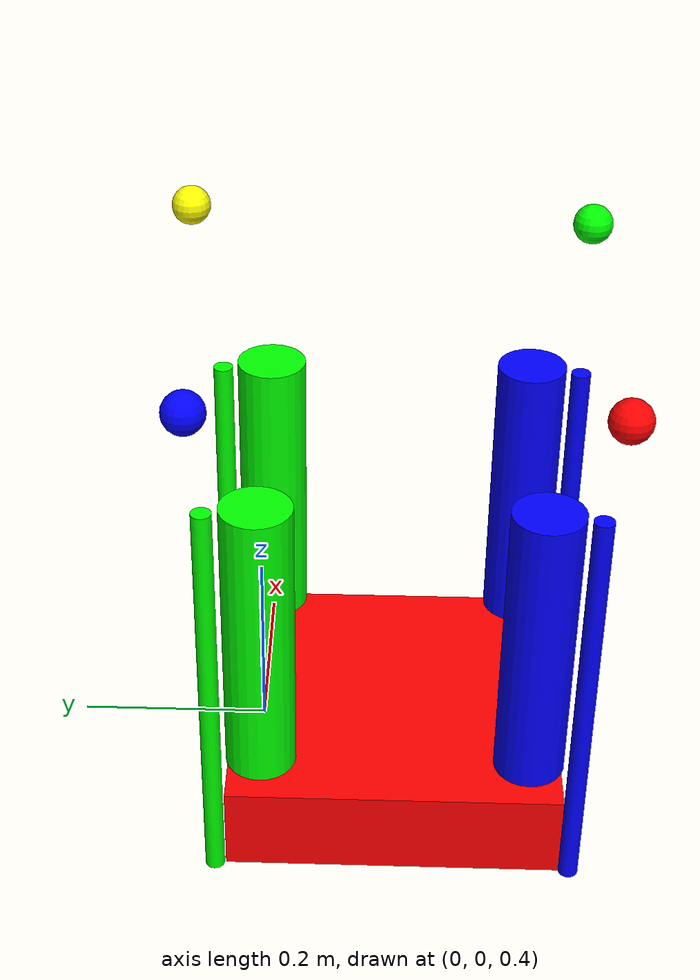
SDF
<?xml version='1.0'?>
<sdf version='1.6'>
  <model name='AquaShokoSimple'>
    <link name='Frame'>
      <pose frame=''>-0.072029 -0.143105 0.449416 0 -0 0</pose>
      <inertial>
        <mass>2.4</mass>
        <inertia>
          <ixx>0.166667</ixx>
          <ixy>0</ixy>
          <ixz>0</ixz>
          <iyy>0.166667</iyy>
          <iyz>0</iyz>
          <izz>0.166667</izz>
        </inertia>
        <pose frame=''>0 0 0 0 -0 0</pose>
      </inertial>
      <self_collide>0</self_collide>
      <kinematic>0</kinematic>
      <gravity>1</gravity>
      <visual name='visual'>
        <pose frame=''>0 0 0 0 -0 0</pose>
        <geometry>
          <box>
            <size>0.336 0.336 0.09</size>
          </box>
        </geometry>
        <material>
          <lighting>1</lighting>
          <script>
            <uri>file://media/materials/scripts/gazebo.material</uri>
            <name>Gazebo/Grey</name>
          </script>
          <ambient>1 0 0 1</ambient>
          <diffuse>1 0 0 1</diffuse>
          <specular>0.01 0.01 0.01 1</specular>
          <emissive>0 0 0 1</emissive>
          <shader type='vertex'>
            <normal_map>__default__</normal_map>
          </shader>
        </material>
        <transparency>0</transparency>
        <cast_shadows>1</cast_shadows>
      </visual>
      <collision name='collision'>
        <laser_retro>0</laser_retro>
        <max_contacts>10</max_contacts>
        <pose frame=''>0 0 0 0 -0 0</pose>
        <geometry>
          <box>
            <size>0.336 0.336 0.09</size>
          </box>
        </geometry>
        <surface>
          <friction>
            <ode>
              <mu>1</mu>
              <mu2>1</mu2>
              <fdir1>0 0 0</fdir1>
              <slip1>0</slip1>
              <slip2>0</slip2>
            </ode>
            <torsional>
              <coefficient>1</coefficient>
              <patch_radius>0</patch_radius>
              <surface_radius>0</surface_radius>
              <use_patch_radius>1</use_patch_radius>
              <ode>
                <slip>0</slip>
              </ode>
            </torsional>
          </friction>
          <bounce>
            <restitution_coefficient>0</restitution_coefficient>
            <threshold>1e+06</threshold>
          </bounce>
          <contact>
            <collide_without_contact>0</collide_without_contact>
            <collide_without_contact_bitmask>1</collide_without_contact_bitmask>
            <collide_bitmask>1</collide_bitmask>
            <ode>
              <soft_cfm>0</soft_cfm>
              <soft_erp>0.2</soft_erp>
              <kp>1e+13</kp>
              <kd>1</kd>
              <max_vel>0.01</max_vel>
              <min_depth>0</min_depth>
            </ode>
            <bullet>
              <split_impulse>1</split_impulse>
              <split_impulse_penetration_threshold>-0.01</split_impulse_penetration_threshold>
              <soft_cfm>0</soft_cfm>
              <soft_erp>0.2</soft_erp>
              <kp>1e+13</kp>
              <kd>1</kd>
            </bullet>
          </contact>
        </surface>
      </collision>
    </link>
    <link name='EndLink'>
      <pose frame=''>0.060971 0.039895 0.589416 0 -0 0</pose>
      <inertial>
        <mass>0.02</mass>
        <inertia>
          <ixx>0.145833</ixx>
          <ixy>0</ixy>
          <ixz>0</ixz>
          <iyy>0.145833</iyy>
          <iyz>0</iyz>
          <izz>0.125</izz>
        </inertia>
        <pose frame=''>0 0 0 0 -0 0</pose>
      </inertial>
      <self_collide>0</self_collide>
      <kinematic>0</kinematic>
      <visual name='visual'>
        <pose frame=''>0 0 0 0 -0 0</pose>
        <geometry>
          <cylinder>
            <radius>0.01</radius>
            <length>0.44</length>
          </cylinder>
        </geometry>
        <material>
          <lighting>1</lighting>
          <script>
            <uri>file://media/materials/scripts/gazebo.material</uri>
            <name>Gazebo/Grey</name>
          </script>
          <ambient>0 1 0 1</ambient>
          <diffuse>0 1 0 1</diffuse>
          <specular>0.01 0.01 0.01 1</specular>
          <emissive>0 0 0 1</emissive>
          <shader type='vertex'>
            <normal_map>__default__</normal_map>
          </shader>
        </material>
        <transparency>0</transparency>
        <cast_shadows>1</cast_shadows>
      </visual>
      <collision name='collision'>
        <laser_retro>0</laser_retro>
        <max_contacts>10</max_contacts>
        <pose frame=''>0 0 0 0 -0 0</pose>
        <geometry>
          <cylinder>
            <radius>0.01</radius>
            <length>0.44</length>
          </cylinder>
        </geometry>
        <surface>
          <friction>
            <ode>
              <mu>1</mu>
              <mu2>1</mu2>
              <fdir1>0 0 0</fdir1>
              <slip1>0</slip1>
              <slip2>0</slip2>
            </ode>
            <torsional>
              <coefficient>1</coefficient>
              <patch_radius>0</patch_radius>
              <surface_radius>0</surface_radius>
              <use_patch_radius>1</use_patch_radius>
              <ode>
                <slip>0</slip>
              </ode>
            </torsional>
          </friction>
          <bounce>
            <restitution_coefficient>0</restitution_coefficient>
            <threshold>1e+06</threshold>
          </bounce>
          <contact>
            <collide_without_contact>0</collide_without_contact>
            <collide_without_contact_bitmask>1</collide_without_contact_bitmask>
            <collide_bitmask>1</collide_bitmask>
            <ode>
              <soft_cfm>0</soft_cfm>
              <soft_erp>0.2</soft_erp>
              <kp>1e+13</kp>
              <kd>1</kd>
              <max_vel>0.01</max_vel>
              <min_depth>0</min_depth>
            </ode>
            <bullet>
              <split_impulse>1</split_impulse>
              <split_impulse_penetration_threshold>-0.01</split_impulse_penetration_threshold>
              <soft_cfm>0</soft_cfm>
              <soft_erp>0.2</soft_erp>
              <kp>1e+13</kp>
              <kd>1</kd>
            </bullet>
          </contact>
        </surface>
      </collision>
    </link>
    <link name='EndLink_clone'>
      <pose frame=''>-0.205029 0.039895 0.589416 0 -0 0</pose>
      <inertial>
        <mass>0.02</mass>
        <inertia>
          <ixx>0.145833</ixx>
          <ixy>0</ixy>
          <ixz>0</ixz>
          <iyy>0.145833</iyy>
          <iyz>0</iyz>
          <izz>0.125</izz>
        </inertia>
        <pose frame=''>0 0 0 0 -0 0</pose>
      </inertial>
      <self_collide>0</self_collide>
      <kinematic>0</kinematic>
      <visual name='visual'>
        <pose frame=''>0 0 0 0 -0 0</pose>
        <geometry>
          <cylinder>
            <radius>0.01</radius>
            <length>0.44</length>
          </cylinder>
        </geometry>
        <material>
          <lighting>1</lighting>
          <script>
            <uri>file://media/materials/scripts/gazebo.material</uri>
            <name>Gazebo/Grey</name>
          </script>
          <ambient>0 1 0 1</ambient>
          <diffuse>0.1 0.1 0.1 1</diffuse>
          <specular>0.01 0.01 0.01 1</specular>
          <emissive>0 0 0 1</emissive>
          <shader type='vertex'>
            <normal_map>__default__</normal_map>
          </shader>
        </material>
        <transparency>0</transparency>
        <cast_shadows>1</cast_shadows>
      </visual>
      <collision name='collision'>
        <laser_retro>0</laser_retro>
        <max_contacts>10</max_contacts>
        <pose frame=''>0 0 0 0 -0 0</pose>
        <geometry>
          <cylinder>
            <radius>0.01</radius>
            <length>0.44</length>
          </cylinder>
        </geometry>
        <surface>
          <friction>
            <ode>
              <mu>1</mu>
              <mu2>1</mu2>
              <fdir1>0 0 0</fdir1>
              <slip1>0</slip1>
              <slip2>0</slip2>
            </ode>
            <torsional>
              <coefficient>1</coefficient>
              <patch_radius>0</patch_radius>
              <surface_radius>0</surface_radius>
              <use_patch_radius>1</use_patch_radius>
              <ode>
                <slip>0</slip>
              </ode>
            </torsional>
          </friction>
          <bounce>
            <restitution_coefficient>0</restitution_coefficient>
            <threshold>1e+06</threshold>
          </bounce>
          <contact>
            <collide_without_contact>0</collide_without_contact>
            <collide_without_contact_bitmask>1</collide_without_contact_bitmask>
            <collide_bitmask>1</collide_bitmask>
            <ode>
              <soft_cfm>0</soft_cfm>
              <soft_erp>0.2</soft_erp>
              <kp>1e+13</kp>
              <kd>1</kd>
              <max_vel>0.01</max_vel>
              <min_depth>0</min_depth>
            </ode>
            <bullet>
              <split_impulse>1</split_impulse>
              <split_impulse_penetration_threshold>-0.01</split_impulse_penetration_threshold>
              <soft_cfm>0</soft_cfm>
              <soft_erp>0.2</soft_erp>
              <kp>1e+13</kp>
              <kd>1</kd>
            </bullet>
          </contact>
        </surface>
      </collision>
    </link>
    <link name='EndLink_clone_0'>
      <pose frame=''>0.060971 -0.326105 0.589416 0 -0 0</pose>
      <inertial>
        <mass>0.02</mass>
        <inertia>
          <ixx>0.145833</ixx>
          <ixy>0</ixy>
          <ixz>0</ixz>
          <iyy>0.145833</iyy>
          <iyz>0</iyz>
          <izz>0.125</izz>
        </inertia>
        <pose frame=''>0 0 0 0 -0 0</pose>
      </inertial>
      <self_collide>0</self_collide>
      <kinematic>0</kinematic>
      <visual name='visual'>
        <pose frame=''>0 0 0 0 -0 0</pose>
        <geometry>
          <cylinder>
            <radius>0.01</radius>
            <length>0.44</length>
          </cylinder>
        </geometry>
        <material>
          <lighting>1</lighting>
          <script>
            <uri>file://media/materials/scripts/gazebo.material</uri>
            <name>Gazebo/Grey</name>
          </script>
          <ambient>0 0 1 1</ambient>
          <diffuse>0 0 1 1</diffuse>
          <specular>0.01 0.01 0.01 1</specular>
          <emissive>0 0 0 1</emissive>
          <shader type='vertex'>
            <normal_map>__default__</normal_map>
          </shader>
        </material>
        <transparency>0</transparency>
        <cast_shadows>1</cast_shadows>
      </visual>
      <collision name='collision'>
        <laser_retro>0</laser_retro>
        <max_contacts>10</max_contacts>
        <pose frame=''>0 0 0 0 -0 0</pose>
        <geometry>
          <cylinder>
            <radius>0.01</radius>
            <length>0.44</length>
          </cylinder>
        </geometry>
        <surface>
          <friction>
            <ode>
              <mu>1</mu>
              <mu2>1</mu2>
              <fdir1>0 0 0</fdir1>
              <slip1>0</slip1>
              <slip2>0</slip2>
            </ode>
            <torsional>
              <coefficient>1</coefficient>
              <patch_radius>0</patch_radius>
              <surface_radius>0</surface_radius>
              <use_patch_radius>1</use_patch_radius>
              <ode>
                <slip>0</slip>
              </ode>
            </torsional>
          </friction>
          <bounce>
            <restitution_coefficient>0</restitution_coefficient>
            <threshold>1e+06</threshold>
          </bounce>
          <contact>
            <collide_without_contact>0</collide_without_contact>
            <collide_without_contact_bitmask>1</collide_without_contact_bitmask>
            <collide_bitmask>1</collide_bitmask>
            <ode>
              <soft_cfm>0</soft_cfm>
              <soft_erp>0.2</soft_erp>
              <kp>1e+13</kp>
              <kd>1</kd>
              <max_vel>0.01</max_vel>
              <min_depth>0</min_depth>
            </ode>
            <bullet>
              <split_impulse>1</split_impulse>
              <split_impulse_penetration_threshold>-0.01</split_impulse_penetration_threshold>
              <soft_cfm>0</soft_cfm>
              <soft_erp>0.2</soft_erp>
              <kp>1e+13</kp>
              <kd>1</kd>
            </bullet>
          </contact>
        </surface>
      </collision>
    </link>
    <link name='EndLink_clone_1'>
      <pose frame=''>-0.205029 -0.326105 0.589416 0 -0 0</pose>
      <inertial>
        <mass>0.02</mass>
        <inertia>
          <ixx>0.145833</ixx>
          <ixy>0</ixy>
          <ixz>0</ixz>
          <iyy>0.145833</iyy>
          <iyz>0</iyz>
          <izz>0.125</izz>
        </inertia>
        <pose frame=''>0 0 0 0 -0 0</pose>
      </inertial>
      <self_collide>0</self_collide>
      <kinematic>0</kinematic>
      <visual name='visual'>
        <pose frame=''>0 0 0 0 -0 0</pose>
        <geometry>
          <cylinder>
            <radius>0.01</radius>
            <length>0.44</length>
          </cylinder>
        </geometry>
        <material>
          <lighting>1</lighting>
          <script>
            <uri>file://media/materials/scripts/gazebo.material</uri>
            <name>Gazebo/Grey</name>
          </script>
          <ambient>0 0 1 1</ambient>
          <diffuse>0.1 0.1 0.1 1</diffuse>
          <specular>0.01 0.01 0.01 1</specular>
          <emissive>0 0 0 1</emissive>
          <shader type='vertex'>
            <normal_map>__default__</normal_map>
          </shader>
        </material>
        <transparency>0</transparency>
        <cast_shadows>1</cast_shadows>
      </visual>
      <collision name='collision'>
        <laser_retro>0</laser_retro>
        <max_contacts>10</max_contacts>
        <pose frame=''>0 0 0 0 -0 0</pose>
        <geometry>
          <cylinder>
            <radius>0.01</radius>
            <length>0.44</length>
          </cylinder>
        </geometry>
        <surface>
          <friction>
            <ode>
              <mu>1</mu>
              <mu2>1</mu2>
              <fdir1>0 0 0</fdir1>
              <slip1>0</slip1>
              <slip2>0</slip2>
            </ode>
            <torsional>
              <coefficient>1</coefficient>
              <patch_radius>0</patch_radius>
              <surface_radius>0</surface_radius>
              <use_patch_radius>1</use_patch_radius>
              <ode>
                <slip>0</slip>
              </ode>
            </torsional>
          </friction>
          <bounce>
            <restitution_coefficient>0</restitution_coefficient>
            <threshold>1e+06</threshold>
          </bounce>
          <contact>
            <collide_without_contact>0</collide_without_contact>
            <collide_without_contact_bitmask>1</collide_without_contact_bitmask>
            <collide_bitmask>1</collide_bitmask>
            <ode>
              <soft_cfm>0</soft_cfm>
              <soft_erp>0.2</soft_erp>
              <kp>1e+13</kp>
              <kd>1</kd>
              <max_vel>0.01</max_vel>
              <min_depth>0</min_depth>
            </ode>
            <bullet>
              <split_impulse>1</split_impulse>
              <split_impulse_penetration_threshold>-0.01</split_impulse_penetration_threshold>
              <soft_cfm>0</soft_cfm>
              <soft_erp>0.2</soft_erp>
              <kp>1e+13</kp>
              <kd>1</kd>
            </bullet>
          </contact>
        </surface>
      </collision>
    </link>
    <link name='ShortLink'>
      <pose frame=''>0.060971 -0.010105 0.666916 0 -0 0</pose>
      <inertial>
        <mass>1.2</mass>
        <inertia>
          <ixx>0.145833</ixx>
          <ixy>0</ixy>
          <ixz>0</ixz>
          <iyy>0.145833</iyy>
          <iyz>0</iyz>
          <izz>0.125</izz>
        </inertia>
        <pose frame=''>0 0 0 0 -0 0</pose>
      </inertial>
      <self_collide>0</self_collide>
      <kinematic>0</kinematic>
      <visual name='visual'>
        <pose frame=''>0 0 0 0 -0 0</pose>
        <geometry>
          <cylinder>
            <radius>0.035</radius>
            <length>0.3</length>
          </cylinder>
        </geometry>
        <material>
          <lighting>1</lighting>
          <script>
            <uri>file://media/materials/scripts/gazebo.material</uri>
            <name>Gazebo/Grey</name>
          </script>
          <ambient>0 1 0 1</ambient>
          <diffuse>0 1 0 1</diffuse>
          <specular>0.01 0.01 0.01 1</specular>
          <emissive>0 0 0 1</emissive>
          <shader type='vertex'>
            <normal_map>__default__</normal_map>
          </shader>
        </material>
        <transparency>0</transparency>
        <cast_shadows>1</cast_shadows>
      </visual>
      <collision name='collision'>
        <laser_retro>0</laser_retro>
        <max_contacts>10</max_contacts>
        <pose frame=''>0 0 0 0 -0 0</pose>
        <geometry>
          <cylinder>
            <radius>0.035</radius>
            <length>0.3</length>
          </cylinder>
        </geometry>
        <surface>
          <friction>
            <ode>
              <mu>1</mu>
              <mu2>1</mu2>
              <fdir1>0 0 0</fdir1>
              <slip1>0</slip1>
              <slip2>0</slip2>
            </ode>
            <torsional>
              <coefficient>1</coefficient>
              <patch_radius>0</patch_radius>
              <surface_radius>0</surface_radius>
              <use_patch_radius>1</use_patch_radius>
              <ode>
                <slip>0</slip>
              </ode>
            </torsional>
          </friction>
          <bounce>
            <restitution_coefficient>0</restitution_coefficient>
            <threshold>1e+06</threshold>
          </bounce>
          <contact>
            <collide_without_contact>0</collide_without_contact>
            <collide_without_contact_bitmask>1</collide_without_contact_bitmask>
            <collide_bitmask>1</collide_bitmask>
            <ode>
              <soft_cfm>0</soft_cfm>
              <soft_erp>0.2</soft_erp>
              <kp>1e+13</kp>
              <kd>1</kd>
              <max_vel>0.01</max_vel>
              <min_depth>0</min_depth>
            </ode>
            <bullet>
              <split_impulse>1</split_impulse>
              <split_impulse_penetration_threshold>-0.01</split_impulse_penetration_threshold>
              <soft_cfm>0</soft_cfm>
              <soft_erp>0.2</soft_erp>
              <kp>1e+13</kp>
              <kd>1</kd>
            </bullet>
          </contact>
        </surface>
      </collision>
    </link>
    <link name='ShortLink_clone'>
      <pose frame=''>-0.205029 -0.010105 0.666916 0 -0 0</pose>
      <inertial>
        <mass>1.2</mass>
        <inertia>
          <ixx>0.145833</ixx>
          <ixy>0</ixy>
          <ixz>0</ixz>
          <iyy>0.145833</iyy>
          <iyz>0</iyz>
          <izz>0.125</izz>
        </inertia>
        <pose frame=''>0 0 0 0 -0 0</pose>
      </inertial>
      <self_collide>0</self_collide>
      <kinematic>0</kinematic>
      <visual name='visual'>
        <pose frame=''>0 0 0 0 -0 0</pose>
        <geometry>
          <cylinder>
            <radius>0.035</radius>
            <length>0.3</length>
          </cylinder>
        </geometry>
        <material>
          <lighting>1</lighting>
          <script>
            <uri>file://media/materials/scripts/gazebo.material</uri>
            <name>Gazebo/Grey</name>
          </script>
          <ambient>0 1 0 1</ambient>
          <diffuse>0.1 0.1 0.1 1</diffuse>
          <specular>0.01 0.01 0.01 1</specular>
          <emissive>0 0 0 1</emissive>
          <shader type='vertex'>
            <normal_map>__default__</normal_map>
          </shader>
        </material>
        <transparency>0</transparency>
        <cast_shadows>1</cast_shadows>
      </visual>
      <collision name='collision'>
        <laser_retro>0</laser_retro>
        <max_contacts>10</max_contacts>
        <pose frame=''>0 0 0 0 -0 0</pose>
        <geometry>
          <cylinder>
            <radius>0.035</radius>
            <length>0.3</length>
          </cylinder>
        </geometry>
        <surface>
          <friction>
            <ode>
              <mu>1</mu>
              <mu2>1</mu2>
              <fdir1>0 0 0</fdir1>
              <slip1>0</slip1>
              <slip2>0</slip2>
            </ode>
            <torsional>
              <coefficient>1</coefficient>
              <patch_radius>0</patch_radius>
              <surface_radius>0</surface_radius>
              <use_patch_radius>1</use_patch_radius>
              <ode>
                <slip>0</slip>
              </ode>
            </torsional>
          </friction>
          <bounce>
            <restitution_coefficient>0</restitution_coefficient>
            <threshold>1e+06</threshold>
          </bounce>
          <contact>
            <collide_without_contact>0</collide_without_contact>
            <collide_without_contact_bitmask>1</collide_without_contact_bitmask>
            <collide_bitmask>1</collide_bitmask>
            <ode>
              <soft_cfm>0</soft_cfm>
              <soft_erp>0.2</soft_erp>
              <kp>1e+13</kp>
              <kd>1</kd>
              <max_vel>0.01</max_vel>
              <min_depth>0</min_depth>
            </ode>
            <bullet>
              <split_impulse>1</split_impulse>
              <split_impulse_penetration_threshold>-0.01</split_impulse_penetration_threshold>
              <soft_cfm>0</soft_cfm>
              <soft_erp>0.2</soft_erp>
              <kp>1e+13</kp>
              <kd>1</kd>
            </bullet>
          </contact>
        </surface>
      </collision>
    </link>
    <link name='ShortLink_clone_0'>
      <pose frame=''>0.060971 -0.276105 0.666916 0 -0 0</pose>
      <inertial>
        <mass>1.2</mass>
        <inertia>
          <ixx>0.145833</ixx>
          <ixy>0</ixy>
          <ixz>0</ixz>
          <iyy>0.145833</iyy>
          <iyz>0</iyz>
          <izz>0.125</izz>
        </inertia>
        <pose frame=''>0 0 0 0 -0 0</pose>
      </inertial>
      <self_collide>0</self_collide>
      <kinematic>0</kinematic>
      <visual name='visual'>
        <pose frame=''>0 0 0 0 -0 0</pose>
        <geometry>
          <cylinder>
            <radius>0.035</radius>
            <length>0.3</length>
          </cylinder>
        </geometry>
        <material>
          <lighting>1</lighting>
          <script>
            <uri>file://media/materials/scripts/gazebo.material</uri>
            <name>Gazebo/Grey</name>
          </script>
          <ambient>0 0 1 1</ambient>
          <diffuse>0 0 1 1</diffuse>
          <specular>0.01 0.01 0.01 1</specular>
          <emissive>0 0 0 1</emissive>
          <shader type='vertex'>
            <normal_map>__default__</normal_map>
          </shader>
        </material>
        <transparency>0</transparency>
        <cast_shadows>1</cast_shadows>
      </visual>
      <collision name='collision'>
        <laser_retro>0</laser_retro>
        <max_contacts>10</max_contacts>
        <pose frame=''>0 0 0 0 -0 0</pose>
        <geometry>
          <cylinder>
            <radius>0.035</radius>
            <length>0.3</length>
          </cylinder>
        </geometry>
        <surface>
          <friction>
            <ode>
              <mu>1</mu>
              <mu2>1</mu2>
              <fdir1>0 0 0</fdir1>
              <slip1>0</slip1>
              <slip2>0</slip2>
            </ode>
            <torsional>
              <coefficient>1</coefficient>
              <patch_radius>0</patch_radius>
              <surface_radius>0</surface_radius>
              <use_patch_radius>1</use_patch_radius>
              <ode>
                <slip>0</slip>
              </ode>
            </torsional>
          </friction>
          <bounce>
            <restitution_coefficient>0</restitution_coefficient>
            <threshold>1e+06</threshold>
          </bounce>
          <contact>
            <collide_without_contact>0</collide_without_contact>
            <collide_without_contact_bitmask>1</collide_without_contact_bitmask>
            <collide_bitmask>1</collide_bitmask>
            <ode>
              <soft_cfm>0</soft_cfm>
              <soft_erp>0.2</soft_erp>
              <kp>1e+13</kp>
              <kd>1</kd>
              <max_vel>0.01</max_vel>
              <min_depth>0</min_depth>
            </ode>
            <bullet>
              <split_impulse>1</split_impulse>
              <split_impulse_penetration_threshold>-0.01</split_impulse_penetration_threshold>
              <soft_cfm>0</soft_cfm>
              <soft_erp>0.2</soft_erp>
              <kp>1e+13</kp>
              <kd>1</kd>
            </bullet>
          </contact>
        </surface>
      </collision>
    </link>
    <link name='ShortLink_clone_1'>
      <pose frame=''>-0.205029 -0.276105 0.666916 0 -0 0</pose>
      <inertial>
        <mass>1.2</mass>
        <inertia>
          <ixx>0.145833</ixx>
          <ixy>0</ixy>
          <ixz>0</ixz>
          <iyy>0.145833</iyy>
          <iyz>0</iyz>
          <izz>0.125</izz>
        </inertia>
        <pose frame=''>0 0 0 0 -0 0</pose>
      </inertial>
      <self_collide>0</self_collide>
      <kinematic>0</kinematic>
      <visual name='visual'>
        <pose frame=''>0 0 0 0 -0 0</pose>
        <geometry>
          <cylinder>
            <radius>0.035</radius>
            <length>0.3</length>
          </cylinder>
        </geometry>
        <material>
          <lighting>1</lighting>
          <script>
            <uri>file://media/materials/scripts/gazebo.material</uri>
            <name>Gazebo/Grey</name>
          </script>
          <ambient>0 0 1 1</ambient>
          <diffuse>0.1 0.1 0.1 1</diffuse>
          <specular>0.01 0.01 0.01 1</specular>
          <emissive>0 0 0 1</emissive>
          <shader type='vertex'>
            <normal_map>__default__</normal_map>
          </shader>
        </material>
        <transparency>0</transparency>
        <cast_shadows>1</cast_shadows>
      </visual>
      <collision name='collision'>
        <laser_retro>0</laser_retro>
        <max_contacts>10</max_contacts>
        <pose frame=''>0 0 0 0 -0 0</pose>
        <geometry>
          <cylinder>
            <radius>0.035</radius>
            <length>0.3</length>
          </cylinder>
        </geometry>
        <surface>
          <friction>
            <ode>
              <mu>1</mu>
              <mu2>1</mu2>
              <fdir1>0 0 0</fdir1>
              <slip1>0</slip1>
              <slip2>0</slip2>
            </ode>
            <torsional>
              <coefficient>1</coefficient>
              <patch_radius>0</patch_radius>
              <surface_radius>0</surface_radius>
              <use_patch_radius>1</use_patch_radius>
              <ode>
                <slip>0</slip>
              </ode>
            </torsional>
          </friction>
          <bounce>
            <restitution_coefficient>0</restitution_coefficient>
            <threshold>1e+06</threshold>
          </bounce>
          <contact>
            <collide_without_contact>0</collide_without_contact>
            <collide_without_contact_bitmask>1</collide_without_contact_bitmask>
            <collide_bitmask>1</collide_bitmask>
            <ode>
              <soft_cfm>0</soft_cfm>
              <soft_erp>0.2</soft_erp>
              <kp>1e+13</kp>
              <kd>1</kd>
              <max_vel>0.01</max_vel>
              <min_depth>0</min_depth>
            </ode>
            <bullet>
              <split_impulse>1</split_impulse>
              <split_impulse_penetration_threshold>-0.01</split_impulse_penetration_threshold>
              <soft_cfm>0</soft_cfm>
              <soft_erp>0.2</soft_erp>
              <kp>1e+13</kp>
              <kd>1</kd>
            </bullet>
          </contact>
        </surface>
      </collision>
    </link>
    <link name='link_0'>
      <pose frame=''>0.145971 0.074895 0.949416 0 -0 0</pose>
      <inertial>
        <mass>1</mass>
        <inertia>
          <ixx>0.1</ixx>
          <ixy>0</ixy>
          <ixz>0</ixz>
          <iyy>0.1</iyy>
          <iyz>0</iyz>
          <izz>0.1</izz>
        </inertia>
        <pose frame=''>0 0 0 0 -0 0</pose>
      </inertial>
      <self_collide>0</self_collide>
      <kinematic>0</kinematic>
      <visual name='visual'>
        <pose frame=''>0 0 0 0 -0 0</pose>
        <geometry>
          <sphere>
            <radius>0.02</radius>
          </sphere>
        </geometry>
        <material>
          <lighting>1</lighting>
          <script>
            <uri>file://media/materials/scripts/gazebo.material</uri>
            <name>Gazebo/Grey</name>
          </script>
          <ambient>1 1 0 1</ambient>
          <diffuse>0 0 0 1</diffuse>
          <specular>0.01 0.01 0.01 1</specular>
          <emissive>0 0 0 1</emissive>
          <shader type='vertex'>
            <normal_map>__default__</normal_map>
          </shader>
        </material>
        <transparency>0</transparency>
        <cast_shadows>1</cast_shadows>
      </visual>
      <collision name='collision'>
        <laser_retro>0</laser_retro>
        <max_contacts>10</max_contacts>
        <pose frame=''>0 0 0 0 -0 0</pose>
        <geometry>
          <sphere>
            <radius>0.02</radius>
          </sphere>
        </geometry>
        <surface>
          <friction>
            <ode>
              <mu>1</mu>
              <mu2>1</mu2>
              <fdir1>0 0 0</fdir1>
              <slip1>0</slip1>
              <slip2>0</slip2>
            </ode>
            <torsional>
              <coefficient>1</coefficient>
              <patch_radius>0</patch_radius>
              <surface_radius>0</surface_radius>
              <use_patch_radius>1</use_patch_radius>
              <ode>
                <slip>0</slip>
              </ode>
            </torsional>
          </friction>
          <bounce>
            <restitution_coefficient>0</restitution_coefficient>
            <threshold>1e+06</threshold>
          </bounce>
          <contact>
            <collide_without_contact>0</collide_without_contact>
            <collide_without_contact_bitmask>1</collide_without_contact_bitmask>
            <collide_bitmask>1</collide_bitmask>
            <ode>
              <soft_cfm>0</soft_cfm>
              <soft_erp>0.2</soft_erp>
              <kp>1e+13</kp>
              <kd>1</kd>
              <max_vel>0.01</max_vel>
              <min_depth>0</min_depth>
            </ode>
            <bullet>
              <split_impulse>1</split_impulse>
              <split_impulse_penetration_threshold>-0.01</split_impulse_penetration_threshold>
              <soft_cfm>0</soft_cfm>
              <soft_erp>0.2</soft_erp>
              <kp>1e+13</kp>
              <kd>1</kd>
            </bullet>
          </contact>
        </surface>
      </collision>
    </link>
    <link name='link_0_clone'>
      <pose frame=''>-0.260029 -0.331105 0.949416 0 -0 0</pose>
      <inertial>
        <mass>1</mass>
        <inertia>
          <ixx>0.1</ixx>
          <ixy>0</ixy>
          <ixz>0</ixz>
          <iyy>0.1</iyy>
          <iyz>0</iyz>
          <izz>0.1</izz>
        </inertia>
        <pose frame=''>0 0 0 0 -0 0</pose>
      </inertial>
      <self_collide>0</self_collide>
      <kinematic>0</kinematic>
      <visual name='visual'>
        <pose frame=''>0 0 0 0 -0 0</pose>
        <geometry>
          <sphere>
            <radius>0.02</radius>
          </sphere>
        </geometry>
        <material>
          <lighting>1</lighting>
          <script>
            <uri>file://media/materials/scripts/gazebo.material</uri>
            <name>Gazebo/Grey</name>
          </script>
          <ambient>1 1 0 1</ambient>
          <diffuse>1 0 0 1</diffuse>
          <specular>0.01 0.01 0.01 1</specular>
          <emissive>0 0 0 1</emissive>
          <shader type='vertex'>
            <normal_map>__default__</normal_map>
          </shader>
        </material>
        <transparency>0</transparency>
        <cast_shadows>1</cast_shadows>
      </visual>
      <collision name='collision'>
        <laser_retro>0</laser_retro>
        <max_contacts>10</max_contacts>
        <pose frame=''>0 0 0 0 -0 0</pose>
        <geometry>
          <sphere>
            <radius>0.02</radius>
          </sphere>
        </geometry>
        <surface>
          <friction>
            <ode>
              <mu>1</mu>
              <mu2>1</mu2>
              <fdir1>0 0 0</fdir1>
              <slip1>0</slip1>
              <slip2>0</slip2>
            </ode>
            <torsional>
              <coefficient>1</coefficient>
              <patch_radius>0</patch_radius>
              <surface_radius>0</surface_radius>
              <use_patch_radius>1</use_patch_radius>
              <ode>
                <slip>0</slip>
              </ode>
            </torsional>
          </friction>
          <bounce>
            <restitution_coefficient>0</restitution_coefficient>
            <threshold>1e+06</threshold>
          </bounce>
          <contact>
            <collide_without_contact>0</collide_without_contact>
            <collide_without_contact_bitmask>1</collide_without_contact_bitmask>
            <collide_bitmask>1</collide_bitmask>
            <ode>
              <soft_cfm>0</soft_cfm>
              <soft_erp>0.2</soft_erp>
              <kp>1e+13</kp>
              <kd>1</kd>
              <max_vel>0.01</max_vel>
              <min_depth>0</min_depth>
            </ode>
            <bullet>
              <split_impulse>1</split_impulse>
              <split_impulse_penetration_threshold>-0.01</split_impulse_penetration_threshold>
              <soft_cfm>0</soft_cfm>
              <soft_erp>0.2</soft_erp>
              <kp>1e+13</kp>
              <kd>1</kd>
            </bullet>
          </contact>
        </surface>
      </collision>
    </link>
    <link name='link_0_clone_0'>
      <pose frame=''>0.115971 -0.331105 0.949416 0 -0 0</pose>
      <inertial>
        <mass>1</mass>
        <inertia>
          <ixx>0.1</ixx>
          <ixy>0</ixy>
          <ixz>0</ixz>
          <iyy>0.1</iyy>
          <iyz>0</iyz>
          <izz>0.1</izz>
        </inertia>
        <pose frame=''>0 0 0 0 -0 0</pose>
      </inertial>
      <self_collide>0</self_collide>
      <kinematic>0</kinematic>
      <visual name='visual'>
        <pose frame=''>0 0 0 0 -0 0</pose>
        <geometry>
          <sphere>
            <radius>0.02</radius>
          </sphere>
        </geometry>
        <material>
          <lighting>1</lighting>
          <script>
            <uri>file://media/materials/scripts/gazebo.material</uri>
            <name>Gazebo/Grey</name>
          </script>
          <ambient>1 1 0 1</ambient>
          <diffuse>0 1 0 1</diffuse>
          <specular>0.01 0.01 0.01 1</specular>
          <emissive>0 0 0 1</emissive>
          <shader type='vertex'>
            <normal_map>__default__</normal_map>
          </shader>
        </material>
        <transparency>0</transparency>
        <cast_shadows>1</cast_shadows>
      </visual>
      <collision name='collision'>
        <laser_retro>0</laser_retro>
        <max_contacts>10</max_contacts>
        <pose frame=''>0 0 0 0 -0 0</pose>
        <geometry>
          <sphere>
            <radius>0.02</radius>
          </sphere>
        </geometry>
        <surface>
          <friction>
            <ode>
              <mu>1</mu>
              <mu2>1</mu2>
              <fdir1>0 0 0</fdir1>
              <slip1>0</slip1>
              <slip2>0</slip2>
            </ode>
            <torsional>
              <coefficient>1</coefficient>
              <patch_radius>0</patch_radius>
              <surface_radius>0</surface_radius>
              <use_patch_radius>1</use_patch_radius>
              <ode>
                <slip>0</slip>
              </ode>
            </torsional>
          </friction>
          <bounce>
            <restitution_coefficient>0</restitution_coefficient>
            <threshold>1e+06</threshold>
          </bounce>
          <contact>
            <collide_without_contact>0</collide_without_contact>
            <collide_without_contact_bitmask>1</collide_without_contact_bitmask>
            <collide_bitmask>1</collide_bitmask>
            <ode>
              <soft_cfm>0</soft_cfm>
              <soft_erp>0.2</soft_erp>
              <kp>1e+13</kp>
              <kd>1</kd>
              <max_vel>0.01</max_vel>
              <min_depth>0</min_depth>
            </ode>
            <bullet>
              <split_impulse>1</split_impulse>
              <split_impulse_penetration_threshold>-0.01</split_impulse_penetration_threshold>
              <soft_cfm>0</soft_cfm>
              <soft_erp>0.2</soft_erp>
              <kp>1e+13</kp>
              <kd>1</kd>
            </bullet>
          </contact>
        </surface>
      </collision>
    </link>
    <link name='link_0_clone_1'>
      <pose frame=''>-0.260029 0.044895 0.949416 0 -0 0</pose>
      <inertial>
        <mass>1</mass>
        <inertia>
          <ixx>0.1</ixx>
          <ixy>0</ixy>
          <ixz>0</ixz>
          <iyy>0.1</iyy>
          <iyz>0</iyz>
          <izz>0.1</izz>
        </inertia>
        <pose frame=''>0 0 0 0 -0 0</pose>
      </inertial>
      <self_collide>0</self_collide>
      <kinematic>0</kinematic>
      <visual name='visual'>
        <pose frame=''>0 0 0 0 -0 0</pose>
        <geometry>
          <sphere>
            <radius>0.02</radius>
          </sphere>
        </geometry>
        <material>
          <lighting>1</lighting>
          <script>
            <uri>file://media/materials/scripts/gazebo.material</uri>
            <name>Gazebo/Grey</name>
          </script>
          <ambient>1 1 0 1</ambient>
          <diffuse>0 0 1 1</diffuse>
          <specular>0.01 0.01 0.01 1</specular>
          <emissive>0 0 0 1</emissive>
          <shader type='vertex'>
            <normal_map>__default__</normal_map>
          </shader>
        </material>
        <transparency>0</transparency>
        <cast_shadows>1</cast_shadows>
      </visual>
      <collision name='collision'>
        <laser_retro>0</laser_retro>
        <max_contacts>10</max_contacts>
        <pose frame=''>0 0 0 0 -0 0</pose>
        <geometry>
          <sphere>
            <radius>0.02</radius>
          </sphere>
        </geometry>
        <surface>
          <friction>
            <ode>
              <mu>1</mu>
              <mu2>1</mu2>
              <fdir1>0 0 0</fdir1>
              <slip1>0</slip1>
              <slip2>0</slip2>
            </ode>
            <torsional>
              <coefficient>1</coefficient>
              <patch_radius>0</patch_radius>
              <surface_radius>0</surface_radius>
              <use_patch_radius>1</use_patch_radius>
              <ode>
                <slip>0</slip>
              </ode>
            </torsional>
          </friction>
          <bounce>
            <restitution_coefficient>0</restitution_coefficient>
            <threshold>1e+06</threshold>
          </bounce>
          <contact>
            <collide_without_contact>0</collide_without_contact>
            <collide_without_contact_bitmask>1</collide_without_contact_bitmask>
            <collide_bitmask>1</collide_bitmask>
            <ode>
              <soft_cfm>0</soft_cfm>
              <soft_erp>0.2</soft_erp>
              <kp>1e+13</kp>
              <kd>1</kd>
              <max_vel>0.01</max_vel>
              <min_depth>0</min_depth>
            </ode>
            <bullet>
              <split_impulse>1</split_impulse>
              <split_impulse_penetration_threshold>-0.01</split_impulse_penetration_threshold>
              <soft_cfm>0</soft_cfm>
              <soft_erp>0.2</soft_erp>
              <kp>1e+13</kp>
              <kd>1</kd>
            </bullet>
          </contact>
        </surface>
      </collision>
    </link>
    <joint name='FLFixed' type='fixed'>
      <parent>Frame</parent>
      <child>link_0</child>
      <pose frame=''>0 0 0 0 -0 0</pose>
      <physics>
        <ode>
          <limit>
            <cfm>0</cfm>
            <erp>0.2</erp>
          </limit>
          <suspension>
            <cfm>0</cfm>
            <erp>0.2</erp>
          </suspension>
        </ode>
      </physics>
    </joint>
    <joint name='FLJoint1' type='revolute2'>
      <parent>Frame</parent>
      <child>ShortLink</child>
      <pose frame=''>0 0 -0.175 0 -0 0</pose>
      <axis>
        <xyz>1 0 0</xyz>
        <use_parent_model_frame>0</use_parent_model_frame>
        <limit>
          <lower>-1.79769e+308</lower>
          <upper>1.79769e+308</upper>
          <effort>8.4</effort>
          <velocity>4.7</velocity>
        </limit>
        <dynamics>
          <spring_reference>0</spring_reference>
          <spring_stiffness>0</spring_stiffness>
          <damping>0</damping>
          <friction>0</friction>
        </dynamics>
      </axis>
      <axis2>
        <xyz>0 0 -1</xyz>
        <use_parent_model_frame>0</use_parent_model_frame>
        <dynamics>
          <spring_reference>0</spring_reference>
          <spring_stiffness>0</spring_stiffness>
          <damping>0</damping>
          <friction>0</friction>
        </dynamics>
        <limit>
          <lower>-1e+16</lower>
          <upper>1e+16</upper>
          <effort>8.4</effort>
          <velocity>-1</velocity>
        </limit>
      </axis2>
      <physics>
        <ode>
          <limit>
            <cfm>0</cfm>
            <erp>0.2</erp>
          </limit>
          <suspension>
            <cfm>0</cfm>
            <erp>0.2</erp>
          </suspension>
        </ode>
      </physics>
    </joint>
    <joint name='FLJoint2' type='revolute'>
      <parent>ShortLink</parent>
      <child>EndLink</child>
      <pose frame=''>0 0 0.25 0 -0 0</pose>
      <axis>
        <xyz>1 0 0</xyz>
        <use_parent_model_frame>0</use_parent_model_frame>
        <limit>
          <lower>-1.79769e+308</lower>
          <upper>1.79769e+308</upper>
          <effort>8.4</effort>
          <velocity>4.7</velocity>
        </limit>
        <dynamics>
          <spring_reference>0</spring_reference>
          <spring_stiffness>0</spring_stiffness>
          <damping>0</damping>
          <friction>0</friction>
        </dynamics>
      </axis>
      <physics>
        <ode>
          <limit>
            <cfm>0</cfm>
            <erp>0.2</erp>
          </limit>
          <suspension>
            <cfm>0</cfm>
            <erp>0.2</erp>
          </suspension>
        </ode>
      </physics>
    </joint>
    <joint name='FRFixed' type='fixed'>
      <parent>Frame</parent>
      <child>link_0_clone_0</child>
      <pose frame=''>0 0 0 0 -0 0</pose>
      <physics>
        <ode>
          <limit>
            <cfm>0</cfm>
            <erp>0.2</erp>
          </limit>
          <suspension>
            <cfm>0</cfm>
            <erp>0.2</erp>
          </suspension>
        </ode>
      </physics>
    </joint>
    <joint name='FRJoint1' type='revolute2'>
      <parent>Frame</parent>
      <child>ShortLink_clone_0</child>
      <pose frame=''>0 0 -0.175 0 -0 0</pose>
      <axis>
        <xyz>1 0 0</xyz>
        <use_parent_model_frame>0</use_parent_model_frame>
        <limit>
          <lower>-1.79769e+308</lower>
          <upper>1.79769e+308</upper>
          <effort>8.4</effort>
          <velocity>4.7</velocity>
        </limit>
        <dynamics>
          <spring_reference>0</spring_reference>
          <spring_stiffness>0</spring_stiffness>
          <damping>0</damping>
          <friction>0</friction>
        </dynamics>
      </axis>
      <axis2>
        <xyz>0 0 -1</xyz>
        <use_parent_model_frame>0</use_parent_model_frame>
        <dynamics>
          <spring_reference>0</spring_reference>
          <spring_stiffness>0</spring_stiffness>
          <damping>0</damping>
          <friction>0</friction>
        </dynamics>
        <limit>
          <lower>-1e+16</lower>
          <upper>1e+16</upper>
          <effort>-1</effort>
          <velocity>-1</velocity>
        </limit>
      </axis2>
      <physics>
        <ode>
          <limit>
            <cfm>0</cfm>
            <erp>0.2</erp>
          </limit>
          <suspension>
            <cfm>0</cfm>
            <erp>0.2</erp>
          </suspension>
        </ode>
      </physics>
    </joint>
    <joint name='FRJoint2' type='revolute'>
      <parent>ShortLink_clone_0</parent>
      <child>EndLink_clone_0</child>
      <pose frame=''>0 0 0.25 0 -0 0</pose>
      <axis>
        <xyz>1 0 0</xyz>
        <use_parent_model_frame>0</use_parent_model_frame>
        <limit>
          <lower>-1.79769e+308</lower>
          <upper>1.79769e+308</upper>
          <effort>8.4</effort>
          <velocity>4.7</velocity>
        </limit>
        <dynamics>
          <spring_reference>0</spring_reference>
          <spring_stiffness>0</spring_stiffness>
          <damping>0</damping>
          <friction>0</friction>
        </dynamics>
      </axis>
      <physics>
        <ode>
          <limit>
            <cfm>0</cfm>
            <erp>0.2</erp>
          </limit>
          <suspension>
            <cfm>0</cfm>
            <erp>0.2</erp>
          </suspension>
        </ode>
      </physics>
    </joint>
    <joint name='RLFixed' type='fixed'>
      <parent>Frame</parent>
      <child>link_0_clone_1</child>
      <pose frame=''>0 0 0 0 -0 0</pose>
      <physics>
        <ode>
          <limit>
            <cfm>0</cfm>
            <erp>0.2</erp>
          </limit>
          <suspension>
            <cfm>0</cfm>
            <erp>0.2</erp>
          </suspension>
        </ode>
      </physics>
    </joint>
    <joint name='RLJoint1' type='revolute2'>
      <parent>Frame</parent>
      <child>ShortLink_clone</child>
      <pose frame=''>0 0 -0.175 0 -0 0</pose>
      <axis>
        <xyz>1 0 0</xyz>
        <use_parent_model_frame>0</use_parent_model_frame>
        <limit>
          <lower>-1.79769e+308</lower>
          <upper>1.79769e+308</upper>
          <effort>8.4</effort>
          <velocity>4.7</velocity>
        </limit>
        <dynamics>
          <spring_reference>0</spring_reference>
          <spring_stiffness>0</spring_stiffness>
          <damping>0</damping>
          <friction>0</friction>
        </dynamics>
      </axis>
      <axis2>
        <xyz>0 0 -1</xyz>
        <use_parent_model_frame>0</use_parent_model_frame>
        <dynamics>
          <spring_reference>0</spring_reference>
          <spring_stiffness>0</spring_stiffness>
          <damping>0</damping>
          <friction>0</friction>
        </dynamics>
        <limit>
          <lower>-1e+16</lower>
          <upper>1e+16</upper>
          <effort>-1</effort>
          <velocity>-1</velocity>
        </limit>
      </axis2>
      <physics>
        <ode>
          <limit>
            <cfm>0</cfm>
            <erp>0.2</erp>
          </limit>
          <suspension>
            <cfm>0</cfm>
            <erp>0.2</erp>
          </suspension>
        </ode>
      </physics>
    </joint>
    <joint name='RLJoint2' type='revolute'>
      <parent>ShortLink_clone</parent>
      <child>EndLink_clone</child>
      <pose frame=''>0 0 0.25 0 -0 0</pose>
      <axis>
        <xyz>1 0 0</xyz>
        <use_parent_model_frame>0</use_parent_model_frame>
        <limit>
          <lower>-1.79769e+308</lower>
          <upper>1.79769e+308</upper>
          <effort>8.4</effort>
          <velocity>4.7</velocity>
        </limit>
        <dynamics>
          <spring_reference>0</spring_reference>
          <spring_stiffness>0</spring_stiffness>
          <damping>0</damping>
          <friction>0</friction>
        </dynamics>
      </axis>
      <physics>
        <ode>
          <limit>
            <cfm>0</cfm>
            <erp>0.2</erp>
          </limit>
          <suspension>
            <cfm>0</cfm>
            <erp>0.2</erp>
          </suspension>
        </ode>
      </physics>
    </joint>
    <joint name='RRFixed' type='fixed'>
      <parent>Frame</parent>
      <child>link_0_clone</child>
      <pose frame=''>0 0 0 0 -0 0</pose>
      <physics>
        <ode>
          <limit>
            <cfm>0</cfm>
            <erp>0.2</erp>
          </limit>
          <suspension>
            <cfm>0</cfm>
            <erp>0.2</erp>
          </suspension>
        </ode>
      </physics>
    </joint>
    <joint name='RRJoint1' type='revolute2'>
      <parent>Frame</parent>
      <child>ShortLink_clone_1</child>
      <pose frame=''>0 0 -0.175 0 -0 0</pose>
      <axis>
        <xyz>1 0 0</xyz>
        <use_parent_model_frame>0</use_parent_model_frame>
        <limit>
          <lower>-1.79769e+308</lower>
          <upper>1.79769e+308</upper>
          <effort>8.4</effort>
          <velocity>4.7</velocity>
        </limit>
        <dynamics>
          <spring_reference>0</spring_reference>
          <spring_stiffness>0</spring_stiffness>
          <damping>0</damping>
          <friction>0</friction>
        </dynamics>
      </axis>
      <axis2>
        <xyz>0 0 -1</xyz>
        <use_parent_model_frame>0</use_parent_model_frame>
        <dynamics>
          <spring_reference>0</spring_reference>
          <spring_stiffness>0</spring_stiffness>
          <damping>0</damping>
          <friction>0</friction>
        </dynamics>
        <limit>
          <lower>-1e+16</lower>
          <upper>1e+16</upper>
          <effort>-1</effort>
          <velocity>-1</velocity>
        </limit>
      </axis2>
      <physics>
        <ode>
          <limit>
            <cfm>0</cfm>
            <erp>0.2</erp>
          </limit>
          <suspension>
            <cfm>0</cfm>
            <erp>0.2</erp>
          </suspension>
        </ode>
      </physics>
    </joint>
    <joint name='RRJoint2' type='revolute'>
      <parent>ShortLink_clone_1</parent>
      <child>EndLink_clone_1</child>
      <pose frame=''>0 0 0.25 0 -0 0</pose>
      <axis>
        <xyz>1 0 0</xyz>
        <use_parent_model_frame>0</use_parent_model_frame>
        <limit>
          <lower>-1.79769e+308</lower>
          <upper>1.79769e+308</upper>
          <effort>8.4</effort>
          <velocity>4.7</velocity>
        </limit>
        <dynamics>
          <spring_reference>0</spring_reference>
          <spring_stiffness>0</spring_stiffness>
          <damping>0</damping>
          <friction>0</friction>
        </dynamics>
      </axis>
      <physics>
        <ode>
          <limit>
            <cfm>0</cfm>
            <erp>0.2</erp>
          </limit>
          <suspension>
            <cfm>0</cfm>
            <erp>0.2</erp>
          </suspension>
        </ode>
      </physics>
    </joint>
    <static>0</static>
    <allow_auto_disable>1</allow_auto_disable>
  </model>
</sdf>
